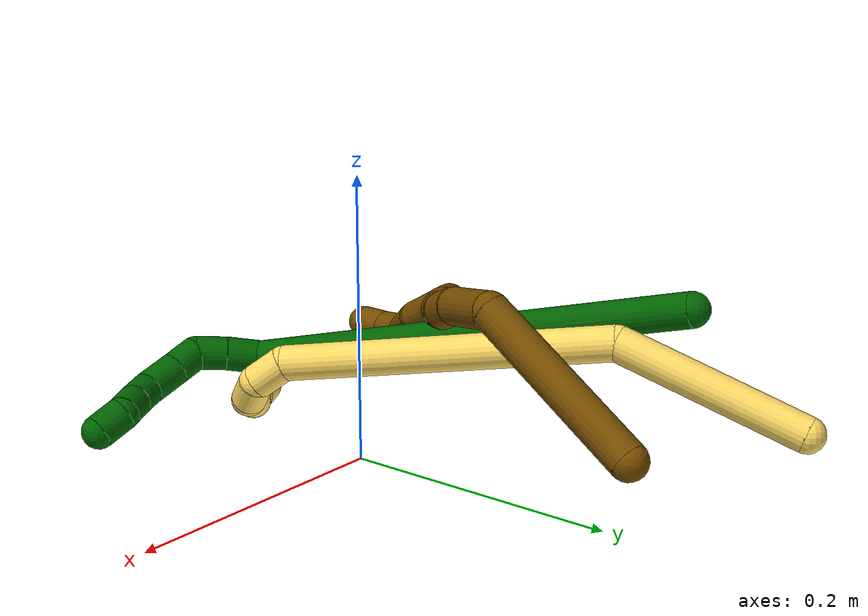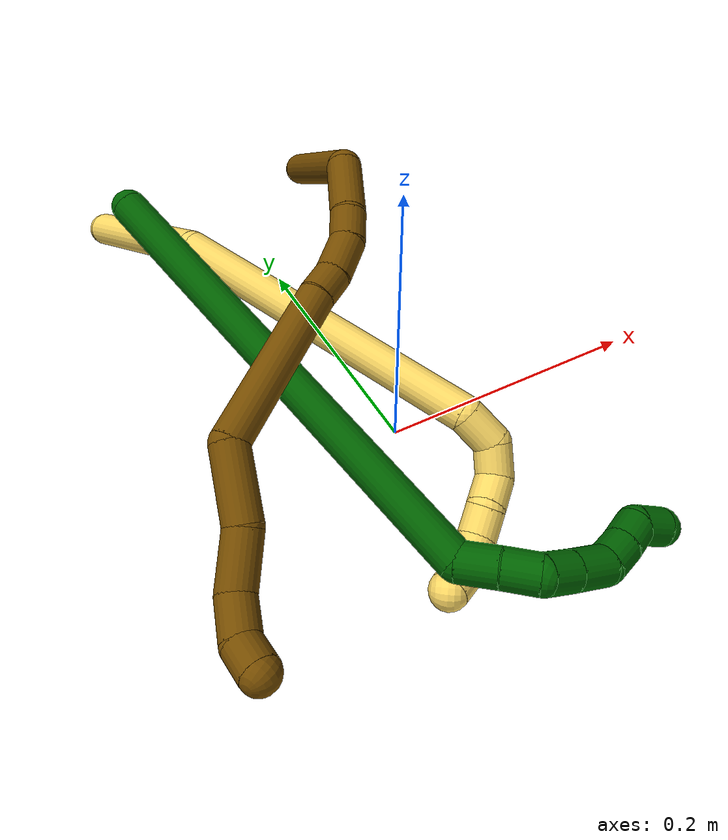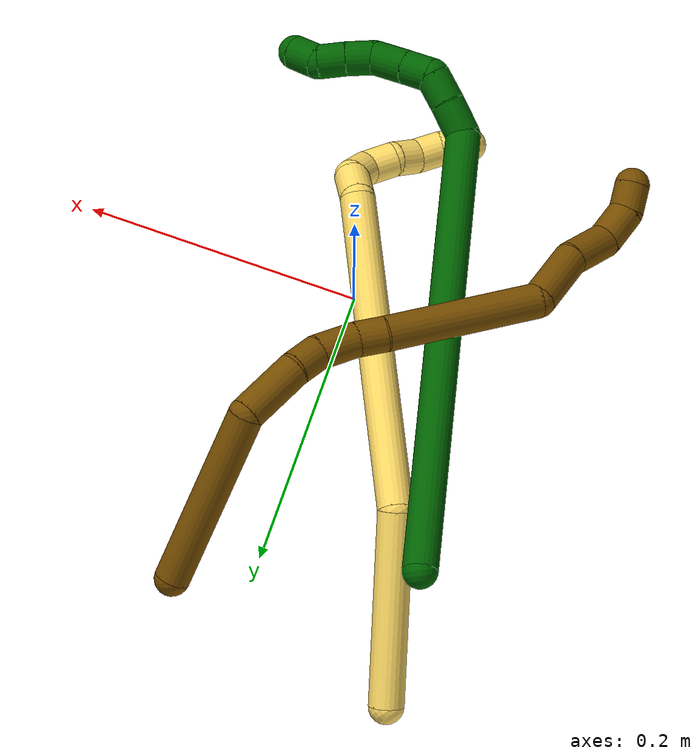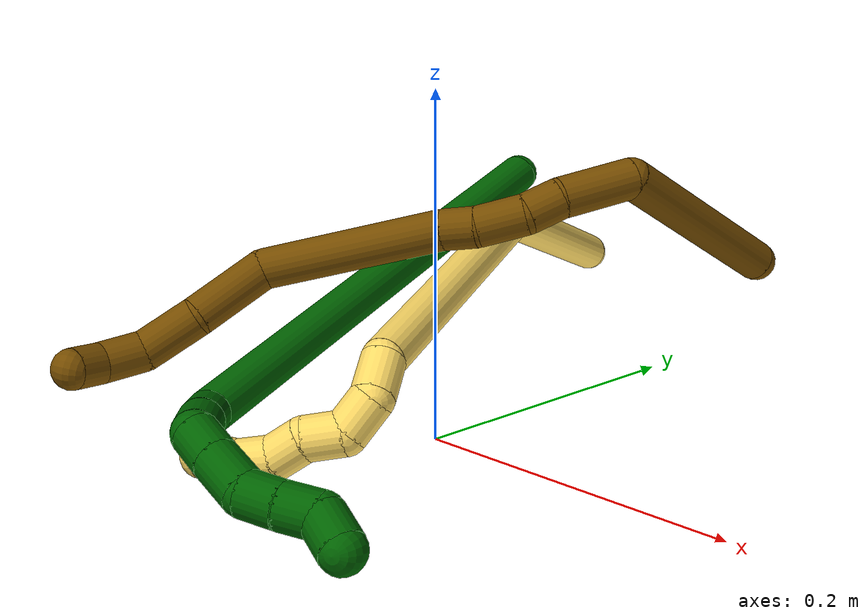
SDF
<sdf version="1.7">
 <world name="default">
  <model name="5">
   <static>0</static>
   <link name="5">
    <collision name="collision-cylinder-e_1_1_4">
     <pose>0.04116 -0.012223 -0.053097 2.91533 0.646972 2.4881</pose>
     <geometry><cylinder><radius>0.0125</radius><length>0.13657</length></cylinder></geometry>
     <surface>
      <friction><ode><mu>1.16</mu><mu2>1.16</mu2><slip1>0</slip1><slip2>0</slip2></ode></friction>
      <contact><ode><kp>1e+06</kp><kd>1</kd><max_vel>0</max_vel><min_depth>0.001</min_depth></ode></contact>
     </surface>
    </collision>
    <visual name="visual-cylinder-e_1_1_4">
     <pose>0.04116 -0.012223 -0.053097 2.91533 0.646972 2.4881</pose>
     <geometry><cylinder><radius>0.0125</radius><length>0.13657</length></cylinder></geometry>
     <material><ambient>1 0.858824 0.4 1</ambient></material>
    </visual>
    <collision name="collision-cylinder-e_2_4_5">
     <pose>0.104274 -0.07653 -0.208331 2.67003 0.189188 0.752224</pose>
     <geometry><cylinder><radius>0.0125</radius><length>0.233468</length></cylinder></geometry>
     <surface>
      <friction><ode><mu>1.16</mu><mu2>1.16</mu2><slip1>0</slip1><slip2>0</slip2></ode></friction>
      <contact><ode><kp>1e+06</kp><kd>1</kd><max_vel>0</max_vel><min_depth>0.001</min_depth></ode></contact>
     </surface>
    </collision>
    <visual name="visual-cylinder-e_2_4_5">
     <pose>0.104274 -0.07653 -0.208331 2.67003 0.189188 0.752224</pose>
     <geometry><cylinder><radius>0.0125</radius><length>0.233468</length></cylinder></geometry>
     <material><ambient>1 0.858824 0.4 1</ambient></material>
    </visual>
    <collision name="collision-cylinder-e_3_5_6">
     <pose>0.123262 -0.13692 -0.319414 2.39317 -0.238219 -0.591598</pose>
     <geometry><cylinder><radius>0.0125</radius><length>0.025125</length></cylinder></geometry>
     <surface>
      <friction><ode><mu>1.16</mu><mu2>1.16</mu2><slip1>0</slip1><slip2>0</slip2></ode></friction>
      <contact><ode><kp>1e+06</kp><kd>1</kd><max_vel>0</max_vel><min_depth>0.001</min_depth></ode></contact>
     </surface>
    </collision>
    <visual name="visual-cylinder-e_3_5_6">
     <pose>0.123262 -0.13692 -0.319414 2.39317 -0.238219 -0.591598</pose>
     <geometry><cylinder><radius>0.0125</radius><length>0.025125</length></cylinder></geometry>
     <material><ambient>1 0.858824 0.4 1</ambient></material>
    </visual>
    <collision name="collision-cylinder-e_4_6_7">
     <pose>0.119234 -0.156447 -0.329804 1.69879 -0.093768 -0.106586</pose>
     <geometry><cylinder><radius>0.0125</radius><length>0.022724</length></cylinder></geometry>
     <surface>
      <friction><ode><mu>1.16</mu><mu2>1.16</mu2><slip1>0</slip1><slip2>0</slip2></ode></friction>
      <contact><ode><kp>1e+06</kp><kd>1</kd><max_vel>0</max_vel><min_depth>0.001</min_depth></ode></contact>
     </surface>
    </collision>
    <visual name="visual-cylinder-e_4_6_7">
     <pose>0.119234 -0.156447 -0.329804 1.69879 -0.093768 -0.106586</pose>
     <geometry><cylinder><radius>0.0125</radius><length>0.022724</length></cylinder></geometry>
     <material><ambient>1 0.858824 0.4 1</ambient></material>
    </visual>
    <collision name="collision-cylinder-e_5_7_8">
     <pose>0.124399 -0.176477 -0.329017 1.32288 0.600823 0.473251</pose>
     <geometry><cylinder><radius>0.0125</radius><length>0.022036</length></cylinder></geometry>
     <surface>
      <friction><ode><mu>1.16</mu><mu2>1.16</mu2><slip1>0</slip1><slip2>0</slip2></ode></friction>
      <contact><ode><kp>1e+06</kp><kd>1</kd><max_vel>0</max_vel><min_depth>0.001</min_depth></ode></contact>
     </surface>
    </collision>
    <visual name="visual-cylinder-e_5_7_8">
     <pose>0.124399 -0.176477 -0.329017 1.32288 0.600823 0.473251</pose>
     <geometry><cylinder><radius>0.0125</radius><length>0.022036</length></cylinder></geometry>
     <material><ambient>1 0.858824 0.4 1</ambient></material>
    </visual>
    <collision name="collision-cylinder-e_6_8_9">
     <pose>0.132359 -0.194854 -0.324425 1.32875 0.173891 0.136314</pose>
     <geometry><cylinder><radius>0.0125</radius><length>0.020009</length></cylinder></geometry>
     <surface>
      <friction><ode><mu>1.16</mu><mu2>1.16</mu2><slip1>0</slip1><slip2>0</slip2></ode></friction>
      <contact><ode><kp>1e+06</kp><kd>1</kd><max_vel>0</max_vel><min_depth>0.001</min_depth></ode></contact>
     </surface>
    </collision>
    <visual name="visual-cylinder-e_6_8_9">
     <pose>0.132359 -0.194854 -0.324425 1.32875 0.173891 0.136314</pose>
     <geometry><cylinder><radius>0.0125</radius><length>0.020009</length></cylinder></geometry>
     <material><ambient>1 0.858824 0.4 1</ambient></material>
    </visual>
    <collision name="collision-cylinder-e_7_9_10">
     <pose>0.139906 -0.212271 -0.31981 1.29123 0.618773 0.472594</pose>
     <geometry><cylinder><radius>0.0125</radius><length>0.020053</length></cylinder></geometry>
     <surface>
      <friction><ode><mu>1.16</mu><mu2>1.16</mu2><slip1>0</slip1><slip2>0</slip2></ode></friction>
      <contact><ode><kp>1e+06</kp><kd>1</kd><max_vel>0</max_vel><min_depth>0.001</min_depth></ode></contact>
     </surface>
    </collision>
    <visual name="visual-cylinder-e_7_9_10">
     <pose>0.139906 -0.212271 -0.31981 1.29123 0.618773 0.472594</pose>
     <geometry><cylinder><radius>0.0125</radius><length>0.020053</length></cylinder></geometry>
     <material><ambient>1 0.858824 0.4 1</ambient></material>
    </visual>
    <collision name="collision-cylinder-e_8_10_2">
     <pose>0.152624 -0.225722 -0.312959 0.883404 0.761181 0.373962</pose>
     <geometry><cylinder><radius>0.0125</radius><length>0.020015</length></cylinder></geometry>
     <surface>
      <friction><ode><mu>1.16</mu><mu2>1.16</mu2><slip1>0</slip1><slip2>0</slip2></ode></friction>
      <contact><ode><kp>1e+06</kp><kd>1</kd><max_vel>0</max_vel><min_depth>0.001</min_depth></ode></contact>
     </surface>
    </collision>
    <visual name="visual-cylinder-e_8_10_2">
     <pose>0.152624 -0.225722 -0.312959 0.883404 0.761181 0.373962</pose>
     <geometry><cylinder><radius>0.0125</radius><length>0.020015</length></cylinder></geometry>
     <material><ambient>1 0.858824 0.4 1</ambient></material>
    </visual>
    <collision name="collision-sphere-2">
     <pose>0.159527 -0.231322 -0.308361 0 -0 0</pose>
     <geometry><sphere><radius>0.0125</radius></sphere></geometry>
     <surface>
      <friction><ode><mu>1.16</mu><mu2>1.16</mu2><slip1>0</slip1><slip2>0</slip2></ode></friction>
      <contact><ode><kp>1e+06</kp><kd>1</kd><max_vel>0</max_vel><min_depth>0.001</min_depth></ode></contact>
     </surface>
    </collision>
    <visual name="visual-sphere-2">
     <pose>0.159527 -0.231322 -0.308361 0 -0 0</pose>
     <geometry><sphere><radius>0.0125</radius></sphere></geometry>
     <material><ambient>1 0.858824 0.4 1</ambient></material>
    </visual>
    <collision name="collision-sphere-10">
     <pose>0.145721 -0.220122 -0.317556 0 -0 0</pose>
     <geometry><sphere><radius>0.0125</radius></sphere></geometry>
     <surface>
      <friction><ode><mu>1.16</mu><mu2>1.16</mu2><slip1>0</slip1><slip2>0</slip2></ode></friction>
      <contact><ode><kp>1e+06</kp><kd>1</kd><max_vel>0</max_vel><min_depth>0.001</min_depth></ode></contact>
     </surface>
    </collision>
    <visual name="visual-sphere-10">
     <pose>0.145721 -0.220122 -0.317556 0 -0 0</pose>
     <geometry><sphere><radius>0.0125</radius></sphere></geometry>
     <material><ambient>1 0.858824 0.4 1</ambient></material>
    </visual>
    <collision name="collision-sphere-9">
     <pose>0.13409 -0.204421 -0.322064 0 -0 0</pose>
     <geometry><sphere><radius>0.0125</radius></sphere></geometry>
     <surface>
      <friction><ode><mu>1.16</mu><mu2>1.16</mu2><slip1>0</slip1><slip2>0</slip2></ode></friction>
      <contact><ode><kp>1e+06</kp><kd>1</kd><max_vel>0</max_vel><min_depth>0.001</min_depth></ode></contact>
     </surface>
    </collision>
    <visual name="visual-sphere-9">
     <pose>0.13409 -0.204421 -0.322064 0 -0 0</pose>
     <geometry><sphere><radius>0.0125</radius></sphere></geometry>
     <material><ambient>1 0.858824 0.4 1</ambient></material>
    </visual>
    <collision name="collision-sphere-4">
     <pose>0.082321 -0.024447 -0.106193 0 -0 0</pose>
     <geometry><sphere><radius>0.0125</radius></sphere></geometry>
     <surface>
      <friction><ode><mu>1.16</mu><mu2>1.16</mu2><slip1>0</slip1><slip2>0</slip2></ode></friction>
      <contact><ode><kp>1e+06</kp><kd>1</kd><max_vel>0</max_vel><min_depth>0.001</min_depth></ode></contact>
     </surface>
    </collision>
    <visual name="visual-sphere-4">
     <pose>0.082321 -0.024447 -0.106193 0 -0 0</pose>
     <geometry><sphere><radius>0.0125</radius></sphere></geometry>
     <material><ambient>1 0.858824 0.4 1</ambient></material>
    </visual>
    <collision name="collision-sphere-1">
     <geometry><sphere><radius>0.0125</radius></sphere></geometry>
     <surface>
      <friction><ode><mu>1.16</mu><mu2>1.16</mu2><slip1>0</slip1><slip2>0</slip2></ode></friction>
      <contact><ode><kp>1e+06</kp><kd>1</kd><max_vel>0</max_vel><min_depth>0.001</min_depth></ode></contact>
     </surface>
    </collision>
    <visual name="visual-sphere-1">
     <geometry><sphere><radius>0.0125</radius></sphere></geometry>
     <material><ambient>1 0.858824 0.4 1</ambient></material>
    </visual>
    <collision name="collision-sphere-8">
     <pose>0.130628 -0.185288 -0.326787 0 -0 0</pose>
     <geometry><sphere><radius>0.0125</radius></sphere></geometry>
     <surface>
      <friction><ode><mu>1.16</mu><mu2>1.16</mu2><slip1>0</slip1><slip2>0</slip2></ode></friction>
      <contact><ode><kp>1e+06</kp><kd>1</kd><max_vel>0</max_vel><min_depth>0.001</min_depth></ode></contact>
     </surface>
    </collision>
    <visual name="visual-sphere-8">
     <pose>0.130628 -0.185288 -0.326787 0 -0 0</pose>
     <geometry><sphere><radius>0.0125</radius></sphere></geometry>
     <material><ambient>1 0.858824 0.4 1</ambient></material>
    </visual>
    <collision name="collision-sphere-5">
     <pose>0.126227 -0.128613 -0.310469 0 -0 0</pose>
     <geometry><sphere><radius>0.0125</radius></sphere></geometry>
     <surface>
      <friction><ode><mu>1.16</mu><mu2>1.16</mu2><slip1>0</slip1><slip2>0</slip2></ode></friction>
      <contact><ode><kp>1e+06</kp><kd>1</kd><max_vel>0</max_vel><min_depth>0.001</min_depth></ode></contact>
     </surface>
    </collision>
    <visual name="visual-sphere-5">
     <pose>0.126227 -0.128613 -0.310469 0 -0 0</pose>
     <geometry><sphere><radius>0.0125</radius></sphere></geometry>
     <material><ambient>1 0.858824 0.4 1</ambient></material>
    </visual>
    <collision name="collision-sphere-6">
     <pose>0.120298 -0.145228 -0.32836 0 -0 0</pose>
     <geometry><sphere><radius>0.0125</radius></sphere></geometry>
     <surface>
      <friction><ode><mu>1.16</mu><mu2>1.16</mu2><slip1>0</slip1><slip2>0</slip2></ode></friction>
      <contact><ode><kp>1e+06</kp><kd>1</kd><max_vel>0</max_vel><min_depth>0.001</min_depth></ode></contact>
     </surface>
    </collision>
    <visual name="visual-sphere-6">
     <pose>0.120298 -0.145228 -0.32836 0 -0 0</pose>
     <geometry><sphere><radius>0.0125</radius></sphere></geometry>
     <material><ambient>1 0.858824 0.4 1</ambient></material>
    </visual>
    <collision name="collision-sphere-7">
     <pose>0.11817 -0.167667 -0.331248 0 -0 0</pose>
     <geometry><sphere><radius>0.0125</radius></sphere></geometry>
     <surface>
      <friction><ode><mu>1.16</mu><mu2>1.16</mu2><slip1>0</slip1><slip2>0</slip2></ode></friction>
      <contact><ode><kp>1e+06</kp><kd>1</kd><max_vel>0</max_vel><min_depth>0.001</min_depth></ode></contact>
     </surface>
    </collision>
    <visual name="visual-sphere-7">
     <pose>0.11817 -0.167667 -0.331248 0 -0 0</pose>
     <geometry><sphere><radius>0.0125</radius></sphere></geometry>
     <material><ambient>1 0.858824 0.4 1</ambient></material>
    </visual>
    <inertial>
     <pose>0.094044 -0.086188 -0.195657 0 -0 0</pose>
     <mass>0.5</mass>
     <inertia>
      <ixx>0.001474</ixx>
      <ixy>0</ixy>
      <ixz>0</ixz>
      <iyy>0.00036</iyy>
      <iyz>0</iyz>
      <izz>0.000166</izz>
     </inertia>
    </inertial>
   </link>
   <pose>-0.120653 0.276069 0.046643 1.65101 -0.785201 -2.27785</pose>
  </model>
  <model name="6">
   <static>0</static>
   <link name="6">
    <collision name="collision-cylinder-e_1_1_4">
     <pose>0.024966 -0.066783 0.154467 0.408076 0.147281 0.030528</pose>
     <geometry><cylinder><radius>0.0125</radius><length>0.340255</length></cylinder></geometry>
     <surface>
      <friction><ode><mu>1.16</mu><mu2>1.16</mu2><slip1>0</slip1><slip2>0</slip2></ode></friction>
      <contact><ode><kp>1e+06</kp><kd>1</kd><max_vel>0</max_vel><min_depth>0.001</min_depth></ode></contact>
     </surface>
    </collision>
    <visual name="visual-cylinder-e_1_1_4">
     <pose>0.024966 -0.066783 0.154467 0.408076 0.147281 0.030528</pose>
     <geometry><cylinder><radius>0.0125</radius><length>0.340255</length></cylinder></geometry>
     <material><ambient>0 0.392157 0.003922 1</ambient></material>
    </visual>
    <collision name="collision-cylinder-e_2_4_5">
     <pose>0.052268 -0.130105 0.321048 -0.278353 0.183284 -0.025745</pose>
     <geometry><cylinder><radius>0.0125</radius><length>0.025627</length></cylinder></geometry>
     <surface>
      <friction><ode><mu>1.16</mu><mu2>1.16</mu2><slip1>0</slip1><slip2>0</slip2></ode></friction>
      <contact><ode><kp>1e+06</kp><kd>1</kd><max_vel>0</max_vel><min_depth>0.001</min_depth></ode></contact>
     </surface>
    </collision>
    <visual name="visual-cylinder-e_2_4_5">
     <pose>0.052268 -0.130105 0.321048 -0.278353 0.183284 -0.025745</pose>
     <geometry><cylinder><radius>0.0125</radius><length>0.025627</length></cylinder></geometry>
     <material><ambient>0 0.392157 0.003922 1</ambient></material>
    </visual>
    <collision name="collision-cylinder-e_3_5_6">
     <pose>0.057593 -0.123876 0.343847 -0.253378 0.264566 -0.033893</pose>
     <geometry><cylinder><radius>0.0125</radius><length>0.02287</length></cylinder></geometry>
     <surface>
      <friction><ode><mu>1.16</mu><mu2>1.16</mu2><slip1>0</slip1><slip2>0</slip2></ode></friction>
      <contact><ode><kp>1e+06</kp><kd>1</kd><max_vel>0</max_vel><min_depth>0.001</min_depth></ode></contact>
     </surface>
    </collision>
    <visual name="visual-cylinder-e_3_5_6">
     <pose>0.057593 -0.123876 0.343847 -0.253378 0.264566 -0.033893</pose>
     <geometry><cylinder><radius>0.0125</radius><length>0.02287</length></cylinder></geometry>
     <material><ambient>0 0.392157 0.003922 1</ambient></material>
    </visual>
    <collision name="collision-cylinder-e_4_6_7">
     <pose>0.069478 -0.117412 0.359316 -0.657956 0.973782 -0.357598</pose>
     <geometry><cylinder><radius>0.0125</radius><length>0.021511</length></cylinder></geometry>
     <surface>
      <friction><ode><mu>1.16</mu><mu2>1.16</mu2><slip1>0</slip1><slip2>0</slip2></ode></friction>
      <contact><ode><kp>1e+06</kp><kd>1</kd><max_vel>0</max_vel><min_depth>0.001</min_depth></ode></contact>
     </surface>
    </collision>
    <visual name="visual-cylinder-e_4_6_7">
     <pose>0.069478 -0.117412 0.359316 -0.657956 0.973782 -0.357598</pose>
     <geometry><cylinder><radius>0.0125</radius><length>0.021511</length></cylinder></geometry>
     <material><ambient>0 0.392157 0.003922 1</ambient></material>
    </visual>
    <collision name="collision-cylinder-e_5_7_8">
     <pose>0.089368 -0.108686 0.369964 -0.708853 0.958381 -0.379909</pose>
     <geometry><cylinder><radius>0.0125</radius><length>0.026876</length></cylinder></geometry>
     <surface>
      <friction><ode><mu>1.16</mu><mu2>1.16</mu2><slip1>0</slip1><slip2>0</slip2></ode></friction>
      <contact><ode><kp>1e+06</kp><kd>1</kd><max_vel>0</max_vel><min_depth>0.001</min_depth></ode></contact>
     </surface>
    </collision>
    <visual name="visual-cylinder-e_5_7_8">
     <pose>0.089368 -0.108686 0.369964 -0.708853 0.958381 -0.379909</pose>
     <geometry><cylinder><radius>0.0125</radius><length>0.026876</length></cylinder></geometry>
     <material><ambient>0 0.392157 0.003922 1</ambient></material>
    </visual>
    <collision name="collision-cylinder-e_6_8_9">
     <pose>0.107802 -0.096614 0.376835 -1.42867 0.807567 -0.709592</pose>
     <geometry><cylinder><radius>0.0125</radius><length>0.020587</length></cylinder></geometry>
     <surface>
      <friction><ode><mu>1.16</mu><mu2>1.16</mu2><slip1>0</slip1><slip2>0</slip2></ode></friction>
      <contact><ode><kp>1e+06</kp><kd>1</kd><max_vel>0</max_vel><min_depth>0.001</min_depth></ode></contact>
     </surface>
    </collision>
    <visual name="visual-cylinder-e_6_8_9">
     <pose>0.107802 -0.096614 0.376835 -1.42867 0.807567 -0.709592</pose>
     <geometry><cylinder><radius>0.0125</radius><length>0.020587</length></cylinder></geometry>
     <material><ambient>0 0.392157 0.003922 1</ambient></material>
    </visual>
    <collision name="collision-cylinder-e_7_9_10">
     <pose>0.122469 -0.082206 0.378096 -1.53645 0.775801 -0.75204</pose>
     <geometry><cylinder><radius>0.0125</radius><length>0.020646</length></cylinder></geometry>
     <surface>
      <friction><ode><mu>1.16</mu><mu2>1.16</mu2><slip1>0</slip1><slip2>0</slip2></ode></friction>
      <contact><ode><kp>1e+06</kp><kd>1</kd><max_vel>0</max_vel><min_depth>0.001</min_depth></ode></contact>
     </surface>
    </collision>
    <visual name="visual-cylinder-e_7_9_10">
     <pose>0.122469 -0.082206 0.378096 -1.53645 0.775801 -0.75204</pose>
     <geometry><cylinder><radius>0.0125</radius><length>0.020646</length></cylinder></geometry>
     <material><ambient>0 0.392157 0.003922 1</ambient></material>
    </visual>
    <collision name="collision-cylinder-e_8_10_2">
     <pose>0.138732 -0.072359 0.383752 -0.430702 0.988765 -0.234735</pose>
     <geometry><cylinder><radius>0.0125</radius><length>0.021629</length></cylinder></geometry>
     <surface>
      <friction><ode><mu>1.16</mu><mu2>1.16</mu2><slip1>0</slip1><slip2>0</slip2></ode></friction>
      <contact><ode><kp>1e+06</kp><kd>1</kd><max_vel>0</max_vel><min_depth>0.001</min_depth></ode></contact>
     </surface>
    </collision>
    <visual name="visual-cylinder-e_8_10_2">
     <pose>0.138732 -0.072359 0.383752 -0.430702 0.988765 -0.234735</pose>
     <geometry><cylinder><radius>0.0125</radius><length>0.021629</length></cylinder></geometry>
     <material><ambient>0 0.392157 0.003922 1</ambient></material>
    </visual>
    <collision name="collision-sphere-2">
     <pose>0.147766 -0.069877 0.389154 0 -0 0</pose>
     <geometry><sphere><radius>0.0125</radius></sphere></geometry>
     <surface>
      <friction><ode><mu>1.16</mu><mu2>1.16</mu2><slip1>0</slip1><slip2>0</slip2></ode></friction>
      <contact><ode><kp>1e+06</kp><kd>1</kd><max_vel>0</max_vel><min_depth>0.001</min_depth></ode></contact>
     </surface>
    </collision>
    <visual name="visual-sphere-2">
     <pose>0.147766 -0.069877 0.389154 0 -0 0</pose>
     <geometry><sphere><radius>0.0125</radius></sphere></geometry>
     <material><ambient>0 0.392157 0.003922 1</ambient></material>
    </visual>
    <collision name="collision-sphere-10">
     <pose>0.129698 -0.074841 0.378349 0 -0 0</pose>
     <geometry><sphere><radius>0.0125</radius></sphere></geometry>
     <surface>
      <friction><ode><mu>1.16</mu><mu2>1.16</mu2><slip1>0</slip1><slip2>0</slip2></ode></friction>
      <contact><ode><kp>1e+06</kp><kd>1</kd><max_vel>0</max_vel><min_depth>0.001</min_depth></ode></contact>
     </surface>
    </collision>
    <visual name="visual-sphere-10">
     <pose>0.129698 -0.074841 0.378349 0 -0 0</pose>
     <geometry><sphere><radius>0.0125</radius></sphere></geometry>
     <material><ambient>0 0.392157 0.003922 1</ambient></material>
    </visual>
    <collision name="collision-sphere-9">
     <pose>0.11524 -0.08957 0.377843 0 -0 0</pose>
     <geometry><sphere><radius>0.0125</radius></sphere></geometry>
     <surface>
      <friction><ode><mu>1.16</mu><mu2>1.16</mu2><slip1>0</slip1><slip2>0</slip2></ode></friction>
      <contact><ode><kp>1e+06</kp><kd>1</kd><max_vel>0</max_vel><min_depth>0.001</min_depth></ode></contact>
     </surface>
    </collision>
    <visual name="visual-sphere-9">
     <pose>0.11524 -0.08957 0.377843 0 -0 0</pose>
     <geometry><sphere><radius>0.0125</radius></sphere></geometry>
     <material><ambient>0 0.392157 0.003922 1</ambient></material>
    </visual>
    <collision name="collision-sphere-4">
     <pose>0.049932 -0.133566 0.308934 0 -0 0</pose>
     <geometry><sphere><radius>0.0125</radius></sphere></geometry>
     <surface>
      <friction><ode><mu>1.16</mu><mu2>1.16</mu2><slip1>0</slip1><slip2>0</slip2></ode></friction>
      <contact><ode><kp>1e+06</kp><kd>1</kd><max_vel>0</max_vel><min_depth>0.001</min_depth></ode></contact>
     </surface>
    </collision>
    <visual name="visual-sphere-4">
     <pose>0.049932 -0.133566 0.308934 0 -0 0</pose>
     <geometry><sphere><radius>0.0125</radius></sphere></geometry>
     <material><ambient>0 0.392157 0.003922 1</ambient></material>
    </visual>
    <collision name="collision-sphere-1">
     <geometry><sphere><radius>0.0125</radius></sphere></geometry>
     <surface>
      <friction><ode><mu>1.16</mu><mu2>1.16</mu2><slip1>0</slip1><slip2>0</slip2></ode></friction>
      <contact><ode><kp>1e+06</kp><kd>1</kd><max_vel>0</max_vel><min_depth>0.001</min_depth></ode></contact>
     </surface>
    </collision>
    <visual name="visual-sphere-1">
     <geometry><sphere><radius>0.0125</radius></sphere></geometry>
     <material><ambient>0 0.392157 0.003922 1</ambient></material>
    </visual>
    <collision name="collision-sphere-8">
     <pose>0.100364 -0.103658 0.375828 0 -0 0</pose>
     <geometry><sphere><radius>0.0125</radius></sphere></geometry>
     <surface>
      <friction><ode><mu>1.16</mu><mu2>1.16</mu2><slip1>0</slip1><slip2>0</slip2></ode></friction>
      <contact><ode><kp>1e+06</kp><kd>1</kd><max_vel>0</max_vel><min_depth>0.001</min_depth></ode></contact>
     </surface>
    </collision>
    <visual name="visual-sphere-8">
     <pose>0.100364 -0.103658 0.375828 0 -0 0</pose>
     <geometry><sphere><radius>0.0125</radius></sphere></geometry>
     <material><ambient>0 0.392157 0.003922 1</ambient></material>
    </visual>
    <collision name="collision-sphere-5">
     <pose>0.054603 -0.126643 0.333162 0 -0 0</pose>
     <geometry><sphere><radius>0.0125</radius></sphere></geometry>
     <surface>
      <friction><ode><mu>1.16</mu><mu2>1.16</mu2><slip1>0</slip1><slip2>0</slip2></ode></friction>
      <contact><ode><kp>1e+06</kp><kd>1</kd><max_vel>0</max_vel><min_depth>0.001</min_depth></ode></contact>
     </surface>
    </collision>
    <visual name="visual-sphere-5">
     <pose>0.054603 -0.126643 0.333162 0 -0 0</pose>
     <geometry><sphere><radius>0.0125</radius></sphere></geometry>
     <material><ambient>0 0.392157 0.003922 1</ambient></material>
    </visual>
    <collision name="collision-sphere-6">
     <pose>0.060583 -0.121109 0.354531 0 -0 0</pose>
     <geometry><sphere><radius>0.0125</radius></sphere></geometry>
     <surface>
      <friction><ode><mu>1.16</mu><mu2>1.16</mu2><slip1>0</slip1><slip2>0</slip2></ode></friction>
      <contact><ode><kp>1e+06</kp><kd>1</kd><max_vel>0</max_vel><min_depth>0.001</min_depth></ode></contact>
     </surface>
    </collision>
    <visual name="visual-sphere-6">
     <pose>0.060583 -0.121109 0.354531 0 -0 0</pose>
     <geometry><sphere><radius>0.0125</radius></sphere></geometry>
     <material><ambient>0 0.392157 0.003922 1</ambient></material>
    </visual>
    <collision name="collision-sphere-7">
     <pose>0.078373 -0.113715 0.3641 0 -0 0</pose>
     <geometry><sphere><radius>0.0125</radius></sphere></geometry>
     <surface>
      <friction><ode><mu>1.16</mu><mu2>1.16</mu2><slip1>0</slip1><slip2>0</slip2></ode></friction>
      <contact><ode><kp>1e+06</kp><kd>1</kd><max_vel>0</max_vel><min_depth>0.001</min_depth></ode></contact>
     </surface>
    </collision>
    <visual name="visual-sphere-7">
     <pose>0.078373 -0.113715 0.3641 0 -0 0</pose>
     <geometry><sphere><radius>0.0125</radius></sphere></geometry>
     <material><ambient>0 0.392157 0.003922 1</ambient></material>
    </visual>
    <inertial>
     <pose>0.045592 -0.079177 0.220371 0 -0 0</pose>
     <mass>0.5</mass>
     <inertia>
      <ixx>0.003376</ixx>
      <ixy>0</ixy>
      <ixz>0</ixz>
      <iyy>0.003133</iyy>
      <iyz>0</iyz>
      <izz>0.000827</izz>
     </inertia>
    </inertial>
   </link>
   <pose>-0.114407 0.19132 0.116415 1.3499 0.888584 0.289808</pose>
  </model>
  <model name="12">
   <static>0</static>
   <link name="12">
    <collision name="collision-cylinder-e_1_1_4">
     <pose>-0.034989 0.038574 -0.039653 -2.37 -0.563959 1.23916</pose>
     <geometry><cylinder><radius>0.0125</radius><length>0.130912</length></cylinder></geometry>
     <surface>
      <friction><ode><mu>1.16</mu><mu2>1.16</mu2><slip1>0</slip1><slip2>0</slip2></ode></friction>
      <contact><ode><kp>1e+06</kp><kd>1</kd><max_vel>0</max_vel><min_depth>0.001</min_depth></ode></contact>
     </surface>
    </collision>
    <visual name="visual-cylinder-e_1_1_4">
     <pose>-0.034989 0.038574 -0.039653 -2.37 -0.563959 1.23916</pose>
     <geometry><cylinder><radius>0.0125</radius><length>0.130912</length></cylinder></geometry>
     <material><ambient>0.466667 0.301961 0 1</ambient></material>
    </visual>
    <collision name="collision-cylinder-e_2_4_5">
     <pose>-0.084717 0.073761 -0.097582 2.95838 -0.670457 -2.62596</pose>
     <geometry><cylinder><radius>0.0125</radius><length>0.047444</length></cylinder></geometry>
     <surface>
      <friction><ode><mu>1.16</mu><mu2>1.16</mu2><slip1>0</slip1><slip2>0</slip2></ode></friction>
      <contact><ode><kp>1e+06</kp><kd>1</kd><max_vel>0</max_vel><min_depth>0.001</min_depth></ode></contact>
     </surface>
    </collision>
    <visual name="visual-cylinder-e_2_4_5">
     <pose>-0.084717 0.073761 -0.097582 2.95838 -0.670457 -2.62596</pose>
     <geometry><cylinder><radius>0.0125</radius><length>0.047444</length></cylinder></geometry>
     <material><ambient>0.466667 0.301961 0 1</ambient></material>
    </visual>
    <collision name="collision-cylinder-e_3_5_6">
     <pose>-0.105875 0.066494 -0.12418 2.7052 -0.610134 -1.91462</pose>
     <geometry><cylinder><radius>0.0125</radius><length>0.022406</length></cylinder></geometry>
     <surface>
      <friction><ode><mu>1.16</mu><mu2>1.16</mu2><slip1>0</slip1><slip2>0</slip2></ode></friction>
      <contact><ode><kp>1e+06</kp><kd>1</kd><max_vel>0</max_vel><min_depth>0.001</min_depth></ode></contact>
     </surface>
    </collision>
    <visual name="visual-cylinder-e_3_5_6">
     <pose>-0.105875 0.066494 -0.12418 2.7052 -0.610134 -1.91462</pose>
     <geometry><cylinder><radius>0.0125</radius><length>0.022406</length></cylinder></geometry>
     <material><ambient>0.466667 0.301961 0 1</ambient></material>
    </visual>
    <collision name="collision-cylinder-e_4_6_7">
     <pose>-0.116557 0.057681 -0.145794 2.78635 -0.292021 -1.37268</pose>
     <geometry><cylinder><radius>0.0125</radius><length>0.02961</length></cylinder></geometry>
     <surface>
      <friction><ode><mu>1.16</mu><mu2>1.16</mu2><slip1>0</slip1><slip2>0</slip2></ode></friction>
      <contact><ode><kp>1e+06</kp><kd>1</kd><max_vel>0</max_vel><min_depth>0.001</min_depth></ode></contact>
     </surface>
    </collision>
    <visual name="visual-cylinder-e_4_6_7">
     <pose>-0.116557 0.057681 -0.145794 2.78635 -0.292021 -1.37268</pose>
     <geometry><cylinder><radius>0.0125</radius><length>0.02961</length></cylinder></geometry>
     <material><ambient>0.466667 0.301961 0 1</ambient></material>
    </visual>
    <collision name="collision-cylinder-e_5_7_8">
     <pose>-0.121841 0.05008 -0.169104 2.88116 -0.098299 -0.718607</pose>
     <geometry><cylinder><radius>0.0125</radius><length>0.020835</length></cylinder></geometry>
     <surface>
      <friction><ode><mu>1.16</mu><mu2>1.16</mu2><slip1>0</slip1><slip2>0</slip2></ode></friction>
      <contact><ode><kp>1e+06</kp><kd>1</kd><max_vel>0</max_vel><min_depth>0.001</min_depth></ode></contact>
     </surface>
    </collision>
    <visual name="visual-cylinder-e_5_7_8">
     <pose>-0.121841 0.05008 -0.169104 2.88116 -0.098299 -0.718607</pose>
     <geometry><cylinder><radius>0.0125</radius><length>0.020835</length></cylinder></geometry>
     <material><ambient>0.466667 0.301961 0 1</ambient></material>
    </visual>
    <collision name="collision-cylinder-e_6_8_9">
     <pose>-0.133237 0.027571 -0.231766 2.78118 -0.182344 -0.930234</pose>
     <geometry><cylinder><radius>0.0125</radius><length>0.114416</length></cylinder></geometry>
     <surface>
      <friction><ode><mu>1.16</mu><mu2>1.16</mu2><slip1>0</slip1><slip2>0</slip2></ode></friction>
      <contact><ode><kp>1e+06</kp><kd>1</kd><max_vel>0</max_vel><min_depth>0.001</min_depth></ode></contact>
     </surface>
    </collision>
    <visual name="visual-cylinder-e_6_8_9">
     <pose>-0.133237 0.027571 -0.231766 2.78118 -0.182344 -0.930234</pose>
     <geometry><cylinder><radius>0.0125</radius><length>0.114416</length></cylinder></geometry>
     <material><ambient>0.466667 0.301961 0 1</ambient></material>
    </visual>
    <collision name="collision-cylinder-e_7_9_10">
     <pose>-0.162108 -0.001613 -0.298062 2.54137 -0.841101 -1.931</pose>
     <geometry><cylinder><radius>0.0125</radius><length>0.04963</length></cylinder></geometry>
     <surface>
      <friction><ode><mu>1.16</mu><mu2>1.16</mu2><slip1>0</slip1><slip2>0</slip2></ode></friction>
      <contact><ode><kp>1e+06</kp><kd>1</kd><max_vel>0</max_vel><min_depth>0.001</min_depth></ode></contact>
     </surface>
    </collision>
    <visual name="visual-cylinder-e_7_9_10">
     <pose>-0.162108 -0.001613 -0.298062 2.54137 -0.841101 -1.931</pose>
     <geometry><cylinder><radius>0.0125</radius><length>0.04963</length></cylinder></geometry>
     <material><ambient>0.466667 0.301961 0 1</ambient></material>
    </visual>
    <collision name="collision-cylinder-e_8_10_11">
     <pose>-0.190264 -0.020478 -0.324439 2.49926 -0.546148 -1.39949</pose>
     <geometry><cylinder><radius>0.0125</radius><length>0.037196</length></cylinder></geometry>
     <surface>
      <friction><ode><mu>1.16</mu><mu2>1.16</mu2><slip1>0</slip1><slip2>0</slip2></ode></friction>
      <contact><ode><kp>1e+06</kp><kd>1</kd><max_vel>0</max_vel><min_depth>0.001</min_depth></ode></contact>
     </surface>
    </collision>
    <visual name="visual-cylinder-e_8_10_11">
     <pose>-0.190264 -0.020478 -0.324439 2.49926 -0.546148 -1.39949</pose>
     <geometry><cylinder><radius>0.0125</radius><length>0.037196</length></cylinder></geometry>
     <material><ambient>0.466667 0.301961 0 1</ambient></material>
    </visual>
    <collision name="collision-cylinder-e_9_11_12">
     <pose>-0.209566 -0.030788 -0.346746 3.05941 -0.786846 -2.94413</pose>
     <geometry><cylinder><radius>0.0125</radius><length>0.027235</length></cylinder></geometry>
     <surface>
      <friction><ode><mu>1.16</mu><mu2>1.16</mu2><slip1>0</slip1><slip2>0</slip2></ode></friction>
      <contact><ode><kp>1e+06</kp><kd>1</kd><max_vel>0</max_vel><min_depth>0.001</min_depth></ode></contact>
     </surface>
    </collision>
    <visual name="visual-cylinder-e_9_11_12">
     <pose>-0.209566 -0.030788 -0.346746 3.05941 -0.786846 -2.94413</pose>
     <geometry><cylinder><radius>0.0125</radius><length>0.027235</length></cylinder></geometry>
     <material><ambient>0.466667 0.301961 0 1</ambient></material>
    </visual>
    <collision name="collision-cylinder-e_10_12_2">
     <pose>-0.228066 -0.029156 -0.360676 -2.63347 -1.05896 2.30637</pose>
     <geometry><cylinder><radius>0.0125</radius><length>0.020317</length></cylinder></geometry>
     <surface>
      <friction><ode><mu>1.16</mu><mu2>1.16</mu2><slip1>0</slip1><slip2>0</slip2></ode></friction>
      <contact><ode><kp>1e+06</kp><kd>1</kd><max_vel>0</max_vel><min_depth>0.001</min_depth></ode></contact>
     </surface>
    </collision>
    <visual name="visual-cylinder-e_10_12_2">
     <pose>-0.228066 -0.029156 -0.360676 -2.63347 -1.05896 2.30637</pose>
     <geometry><cylinder><radius>0.0125</radius><length>0.020317</length></cylinder></geometry>
     <material><ambient>0.466667 0.301961 0 1</ambient></material>
    </visual>
    <collision name="collision-sphere-2">
     <pose>-0.236923 -0.026736 -0.365023 0 -0 0</pose>
     <geometry><sphere><radius>0.0125</radius></sphere></geometry>
     <surface>
      <friction><ode><mu>1.16</mu><mu2>1.16</mu2><slip1>0</slip1><slip2>0</slip2></ode></friction>
      <contact><ode><kp>1e+06</kp><kd>1</kd><max_vel>0</max_vel><min_depth>0.001</min_depth></ode></contact>
     </surface>
    </collision>
    <visual name="visual-sphere-2">
     <pose>-0.236923 -0.026736 -0.365023 0 -0 0</pose>
     <geometry><sphere><radius>0.0125</radius></sphere></geometry>
     <material><ambient>0.466667 0.301961 0 1</ambient></material>
    </visual>
    <collision name="collision-sphere-12">
     <pose>-0.219209 -0.031577 -0.356329 0 -0 0</pose>
     <geometry><sphere><radius>0.0125</radius></sphere></geometry>
     <surface>
      <friction><ode><mu>1.16</mu><mu2>1.16</mu2><slip1>0</slip1><slip2>0</slip2></ode></friction>
      <contact><ode><kp>1e+06</kp><kd>1</kd><max_vel>0</max_vel><min_depth>0.001</min_depth></ode></contact>
     </surface>
    </collision>
    <visual name="visual-sphere-12">
     <pose>-0.219209 -0.031577 -0.356329 0 -0 0</pose>
     <geometry><sphere><radius>0.0125</radius></sphere></geometry>
     <material><ambient>0.466667 0.301961 0 1</ambient></material>
    </visual>
    <collision name="collision-sphere-11">
     <pose>-0.199924 -0.029998 -0.337164 0 -0 0</pose>
     <geometry><sphere><radius>0.0125</radius></sphere></geometry>
     <surface>
      <friction><ode><mu>1.16</mu><mu2>1.16</mu2><slip1>0</slip1><slip2>0</slip2></ode></friction>
      <contact><ode><kp>1e+06</kp><kd>1</kd><max_vel>0</max_vel><min_depth>0.001</min_depth></ode></contact>
     </surface>
    </collision>
    <visual name="visual-sphere-11">
     <pose>-0.199924 -0.029998 -0.337164 0 -0 0</pose>
     <geometry><sphere><radius>0.0125</radius></sphere></geometry>
     <material><ambient>0.466667 0.301961 0 1</ambient></material>
    </visual>
    <collision name="collision-sphere-10">
     <pose>-0.180604 -0.010957 -0.311713 0 -0 0</pose>
     <geometry><sphere><radius>0.0125</radius></sphere></geometry>
     <surface>
      <friction><ode><mu>1.16</mu><mu2>1.16</mu2><slip1>0</slip1><slip2>0</slip2></ode></friction>
      <contact><ode><kp>1e+06</kp><kd>1</kd><max_vel>0</max_vel><min_depth>0.001</min_depth></ode></contact>
     </surface>
    </collision>
    <visual name="visual-sphere-10">
     <pose>-0.180604 -0.010957 -0.311713 0 -0 0</pose>
     <geometry><sphere><radius>0.0125</radius></sphere></geometry>
     <material><ambient>0.466667 0.301961 0 1</ambient></material>
    </visual>
    <collision name="collision-sphere-9">
     <pose>-0.143611 0.00773 -0.284411 0 -0 0</pose>
     <geometry><sphere><radius>0.0125</radius></sphere></geometry>
     <surface>
      <friction><ode><mu>1.16</mu><mu2>1.16</mu2><slip1>0</slip1><slip2>0</slip2></ode></friction>
      <contact><ode><kp>1e+06</kp><kd>1</kd><max_vel>0</max_vel><min_depth>0.001</min_depth></ode></contact>
     </surface>
    </collision>
    <visual name="visual-sphere-9">
     <pose>-0.143611 0.00773 -0.284411 0 -0 0</pose>
     <geometry><sphere><radius>0.0125</radius></sphere></geometry>
     <material><ambient>0.466667 0.301961 0 1</ambient></material>
    </visual>
    <collision name="collision-sphere-4">
     <pose>-0.069977 0.077147 -0.079307 0 -0 0</pose>
     <geometry><sphere><radius>0.0125</radius></sphere></geometry>
     <surface>
      <friction><ode><mu>1.16</mu><mu2>1.16</mu2><slip1>0</slip1><slip2>0</slip2></ode></friction>
      <contact><ode><kp>1e+06</kp><kd>1</kd><max_vel>0</max_vel><min_depth>0.001</min_depth></ode></contact>
     </surface>
    </collision>
    <visual name="visual-sphere-4">
     <pose>-0.069977 0.077147 -0.079307 0 -0 0</pose>
     <geometry><sphere><radius>0.0125</radius></sphere></geometry>
     <material><ambient>0.466667 0.301961 0 1</ambient></material>
    </visual>
    <collision name="collision-sphere-1">
     <geometry><sphere><radius>0.0125</radius></sphere></geometry>
     <surface>
      <friction><ode><mu>1.16</mu><mu2>1.16</mu2><slip1>0</slip1><slip2>0</slip2></ode></friction>
      <contact><ode><kp>1e+06</kp><kd>1</kd><max_vel>0</max_vel><min_depth>0.001</min_depth></ode></contact>
     </surface>
    </collision>
    <visual name="visual-sphere-1">
     <geometry><sphere><radius>0.0125</radius></sphere></geometry>
     <material><ambient>0.466667 0.301961 0 1</ambient></material>
    </visual>
    <collision name="collision-sphere-8">
     <pose>-0.122864 0.047411 -0.179122 0 -0 0</pose>
     <geometry><sphere><radius>0.0125</radius></sphere></geometry>
     <surface>
      <friction><ode><mu>1.16</mu><mu2>1.16</mu2><slip1>0</slip1><slip2>0</slip2></ode></friction>
      <contact><ode><kp>1e+06</kp><kd>1</kd><max_vel>0</max_vel><min_depth>0.001</min_depth></ode></contact>
     </surface>
    </collision>
    <visual name="visual-sphere-8">
     <pose>-0.122864 0.047411 -0.179122 0 -0 0</pose>
     <geometry><sphere><radius>0.0125</radius></sphere></geometry>
     <material><ambient>0.466667 0.301961 0 1</ambient></material>
    </visual>
    <collision name="collision-sphere-5">
     <pose>-0.099456 0.070375 -0.115858 0 -0 0</pose>
     <geometry><sphere><radius>0.0125</radius></sphere></geometry>
     <surface>
      <friction><ode><mu>1.16</mu><mu2>1.16</mu2><slip1>0</slip1><slip2>0</slip2></ode></friction>
      <contact><ode><kp>1e+06</kp><kd>1</kd><max_vel>0</max_vel><min_depth>0.001</min_depth></ode></contact>
     </surface>
    </collision>
    <visual name="visual-sphere-5">
     <pose>-0.099456 0.070375 -0.115858 0 -0 0</pose>
     <geometry><sphere><radius>0.0125</radius></sphere></geometry>
     <material><ambient>0.466667 0.301961 0 1</ambient></material>
    </visual>
    <collision name="collision-sphere-6">
     <pose>-0.112295 0.062613 -0.132501 0 -0 0</pose>
     <geometry><sphere><radius>0.0125</radius></sphere></geometry>
     <surface>
      <friction><ode><mu>1.16</mu><mu2>1.16</mu2><slip1>0</slip1><slip2>0</slip2></ode></friction>
      <contact><ode><kp>1e+06</kp><kd>1</kd><max_vel>0</max_vel><min_depth>0.001</min_depth></ode></contact>
     </surface>
    </collision>
    <visual name="visual-sphere-6">
     <pose>-0.112295 0.062613 -0.132501 0 -0 0</pose>
     <geometry><sphere><radius>0.0125</radius></sphere></geometry>
     <material><ambient>0.466667 0.301961 0 1</ambient></material>
    </visual>
    <collision name="collision-sphere-7">
     <pose>-0.120819 0.05275 -0.159087 0 -0 0</pose>
     <geometry><sphere><radius>0.0125</radius></sphere></geometry>
     <surface>
      <friction><ode><mu>1.16</mu><mu2>1.16</mu2><slip1>0</slip1><slip2>0</slip2></ode></friction>
      <contact><ode><kp>1e+06</kp><kd>1</kd><max_vel>0</max_vel><min_depth>0.001</min_depth></ode></contact>
     </surface>
    </collision>
    <visual name="visual-sphere-7">
     <pose>-0.120819 0.05275 -0.159087 0 -0 0</pose>
     <geometry><sphere><radius>0.0125</radius></sphere></geometry>
     <material><ambient>0.466667 0.301961 0 1</ambient></material>
    </visual>
    <inertial>
     <pose>-0.115339 0.027345 -0.181186 0 -0 0</pose>
     <mass>0.5</mass>
     <inertia><ixx>0.00013</ixx><ixy>0</ixy><ixz>0</ixz><iyy>7e-06</iyy><iyz>0</iyz><izz>6.4e-05</izz></inertia>
    </inertial>
   </link>
   <pose>0.045836 0.245201 0.072485 1.71775 -0.269926 2.0705</pose>
  </model>
 </world>
</sdf>
